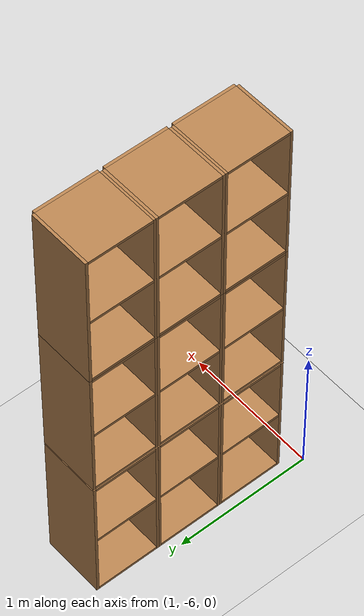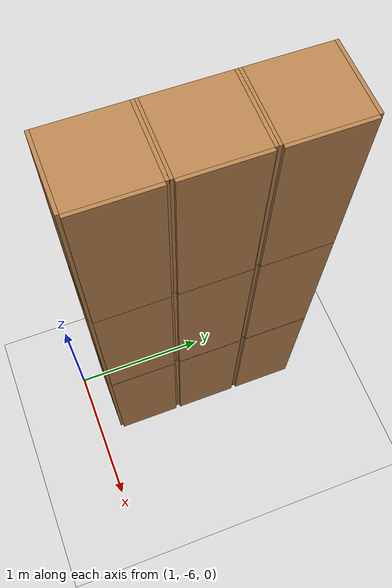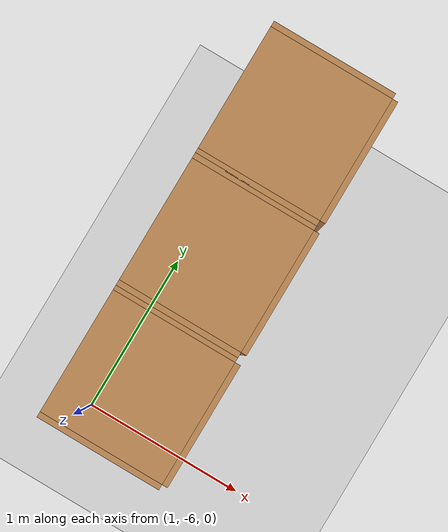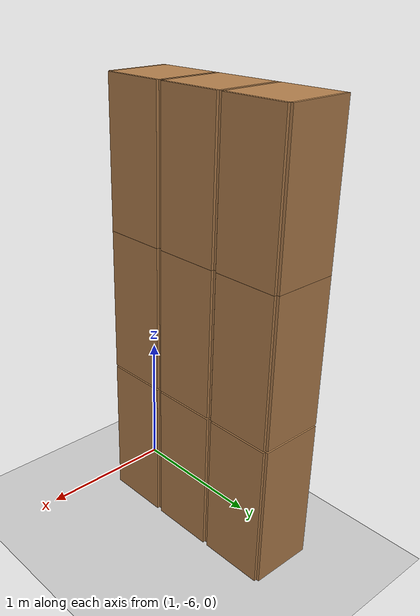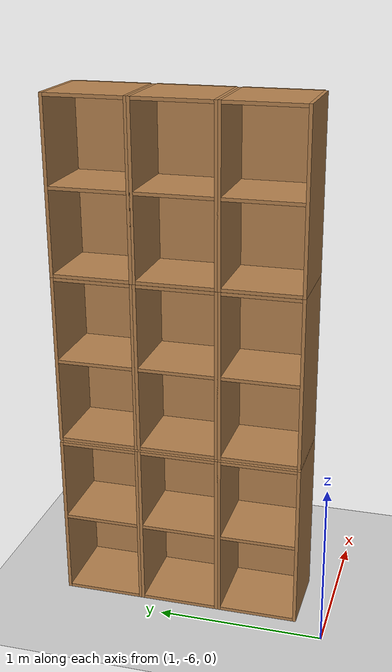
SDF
<sdf version="1.6">
 <world name="default">
  <model name="ground_plane">
   <static>1</static>
   <link name="link">
    <collision name="collision">
     <geometry><plane><normal>0 0 1</normal><size>100 100</size></plane></geometry>
     <surface>
      <contact><collide_bitmask>65535</collide_bitmask></contact>
      <friction><ode><mu>100</mu><mu2>50</mu2></ode></friction>
     </surface>
    </collision>
    <visual name="visual">
     <cast_shadows>0</cast_shadows>
     <geometry><plane><normal>0 0 1</normal><size>100 100</size></plane></geometry>
     <material>
      <script><uri>file://media/materials/scripts/gazebo.material</uri><name>Gazebo/Grey</name></script>
     </material>
    </visual>
   </link>
  </model>
  <model name="Locker18_clone_3_clone_clone_0">
   <model name="Locker18">
    <model name="Locker3">
     <model name="cabinet">
      <static>1</static>
      <link name="cabinet_bottom_plate">
       <inertial>
        <pose>0 0 -1 0 -0 0</pose>
        <inertia><ixx>2.05</ixx><ixy>0</ixy><ixz>0</ixz><iyy>2.05</iyy><iyz>0</iyz><izz>2.05</izz></inertia>
        <mass>25</mass>
       </inertial>
       <collision name="cabinet_bottom_plate_geom">
        <pose>0 0 0.01 0 -0 0</pose>
        <geometry><box><size>0.45 0.45 0.02</size></box></geometry>
       </collision>
       <visual name="cabinet_bottom_plate_geom_visual">
        <pose>0 0 0.01 0 -0 0</pose>
        <geometry><box><size>0.45 0.45 0.02</size></box></geometry>
        <material>
         <script><uri>file://media/materials/scripts/gazebo.material</uri><name>Gazebo/Wood</name></script>
        </material>
       </visual>
       <collision name="cabinet_bottom_plate_geom_cabinet_back_plate">
        <pose>0.235 0 0.51 0 -0 0</pose>
        <geometry><box><size>0.02 0.45 1.02</size></box></geometry>
       </collision>
       <visual name="cabinet_bottom_plate_geom_cabinet_back_plate_visual">
        <pose>0.235 0 0.51 0 -0 0</pose>
        <geometry><box><size>0.02 0.45 1.02</size></box></geometry>
        <material>
         <script><uri>file://media/materials/scripts/gazebo.material</uri><name>Gazebo/Wood</name></script>
        </material>
       </visual>
       <collision name="cabinet_bottom_plate_geom_cabinet_left_plate">
        <pose>0 0.235 0.51 0 -0 0</pose>
        <geometry><box><size>0.45 0.02 1.02</size></box></geometry>
       </collision>
       <visual name="cabinet_bottom_plate_geom_cabinet_left_plate_visual">
        <pose>0 0.235 0.51 0 -0 0</pose>
        <geometry><box><size>0.45 0.02 1.02</size></box></geometry>
        <material>
         <script><uri>file://media/materials/scripts/gazebo.material</uri><name>Gazebo/Wood</name></script>
        </material>
       </visual>
       <collision name="cabinet_bottom_plate_geom_cabinet_middle_plate">
        <pose>0 0 0.51 0 -0 0</pose>
        <geometry><box><size>0.45 0.45 0.02</size></box></geometry>
       </collision>
       <visual name="cabinet_bottom_plate_geom_cabinet_middle_plate_visual">
        <pose>0 0 0.51 0 -0 0</pose>
        <geometry><box><size>0.45 0.45 0.02</size></box></geometry>
        <material>
         <script><uri>file://media/materials/scripts/gazebo.material</uri><name>Gazebo/Wood</name></script>
        </material>
       </visual>
       <collision name="cabinet_bottom_plate_geom_cabinet_right_plate">
        <pose>0 -0.235 0.51 0 -0 0</pose>
        <geometry><box><size>0.45 0.02 1.02</size></box></geometry>
       </collision>
       <visual name="cabinet_bottom_plate_geom_cabinet_right_plate_visual">
        <pose>0 -0.235 0.51 0 -0 0</pose>
        <geometry><box><size>0.45 0.02 1.02</size></box></geometry>
        <material>
         <script><uri>file://media/materials/scripts/gazebo.material</uri><name>Gazebo/Wood</name></script>
        </material>
       </visual>
       <collision name="cabinet_bottom_plate_geom_cabinet_top_plate">
        <pose>0 0 1.01 0 -0 0</pose>
        <geometry><box><size>0.45 0.45 0.02</size></box></geometry>
       </collision>
       <visual name="cabinet_bottom_plate_geom_cabinet_top_plate_visual">
        <pose>0 0 1.01 0 -0 0</pose>
        <geometry><box><size>0.45 0.45 0.02</size></box></geometry>
        <material>
         <script><uri>file://media/materials/scripts/gazebo.material</uri><name>Gazebo/Wood</name></script>
        </material>
       </visual>
      </link>
      <pose>-0.676968 1.45758 0 0 -0 0</pose>
     </model>
     <model name="cabinet_clone">
      <static>1</static>
      <link name="cabinet_bottom_plate">
       <inertial>
        <pose>0 0 -1 0 -0 0</pose>
        <inertia><ixx>2.05</ixx><ixy>0</ixy><ixz>0</ixz><iyy>2.05</iyy><iyz>0</iyz><izz>2.05</izz></inertia>
        <mass>25</mass>
       </inertial>
       <collision name="cabinet_bottom_plate_geom">
        <pose>0 0 0.01 0 -0 0</pose>
        <geometry><box><size>0.45 0.45 0.02</size></box></geometry>
       </collision>
       <visual name="cabinet_bottom_plate_geom_visual">
        <pose>0 0 0.01 0 -0 0</pose>
        <geometry><box><size>0.45 0.45 0.02</size></box></geometry>
        <material>
         <script><uri>file://media/materials/scripts/gazebo.material</uri><name>Gazebo/Wood</name></script>
        </material>
       </visual>
       <collision name="cabinet_bottom_plate_geom_cabinet_back_plate">
        <pose>0.235 0 0.51 0 -0 0</pose>
        <geometry><box><size>0.02 0.45 1.02</size></box></geometry>
       </collision>
       <visual name="cabinet_bottom_plate_geom_cabinet_back_plate_visual">
        <pose>0.235 0 0.51 0 -0 0</pose>
        <geometry><box><size>0.02 0.45 1.02</size></box></geometry>
        <material>
         <script><uri>file://media/materials/scripts/gazebo.material</uri><name>Gazebo/Wood</name></script>
        </material>
       </visual>
       <collision name="cabinet_bottom_plate_geom_cabinet_left_plate">
        <pose>0 0.235 0.51 0 -0 0</pose>
        <geometry><box><size>0.45 0.02 1.02</size></box></geometry>
       </collision>
       <visual name="cabinet_bottom_plate_geom_cabinet_left_plate_visual">
        <pose>0 0.235 0.51 0 -0 0</pose>
        <geometry><box><size>0.45 0.02 1.02</size></box></geometry>
        <material>
         <script><uri>file://media/materials/scripts/gazebo.material</uri><name>Gazebo/Wood</name></script>
        </material>
       </visual>
       <collision name="cabinet_bottom_plate_geom_cabinet_middle_plate">
        <pose>0 0 0.51 0 -0 0</pose>
        <geometry><box><size>0.45 0.45 0.02</size></box></geometry>
       </collision>
       <visual name="cabinet_bottom_plate_geom_cabinet_middle_plate_visual">
        <pose>0 0 0.51 0 -0 0</pose>
        <geometry><box><size>0.45 0.45 0.02</size></box></geometry>
        <material>
         <script><uri>file://media/materials/scripts/gazebo.material</uri><name>Gazebo/Wood</name></script>
        </material>
       </visual>
       <collision name="cabinet_bottom_plate_geom_cabinet_right_plate">
        <pose>0 -0.235 0.51 0 -0 0</pose>
        <geometry><box><size>0.45 0.02 1.02</size></box></geometry>
       </collision>
       <visual name="cabinet_bottom_plate_geom_cabinet_right_plate_visual">
        <pose>0 -0.235 0.51 0 -0 0</pose>
        <geometry><box><size>0.45 0.02 1.02</size></box></geometry>
        <material>
         <script><uri>file://media/materials/scripts/gazebo.material</uri><name>Gazebo/Wood</name></script>
        </material>
       </visual>
       <collision name="cabinet_bottom_plate_geom_cabinet_top_plate">
        <pose>0 0 1.01 0 -0 0</pose>
        <geometry><box><size>0.45 0.45 0.02</size></box></geometry>
       </collision>
       <visual name="cabinet_bottom_plate_geom_cabinet_top_plate_visual">
        <pose>0 0 1.01 0 -0 0</pose>
        <geometry><box><size>0.45 0.45 0.02</size></box></geometry>
        <material>
         <script><uri>file://media/materials/scripts/gazebo.material</uri><name>Gazebo/Wood</name></script>
        </material>
       </visual>
      </link>
      <pose>-0.676968 0.970971 0 0 -0 0</pose>
     </model>
     <model name="cabinet_clone_0">
      <static>1</static>
      <link name="cabinet_bottom_plate">
       <inertial>
        <pose>0 0 -1 0 -0 0</pose>
        <inertia><ixx>2.05</ixx><ixy>0</ixy><ixz>0</ixz><iyy>2.05</iyy><iyz>0</iyz><izz>2.05</izz></inertia>
        <mass>25</mass>
       </inertial>
       <collision name="cabinet_bottom_plate_geom">
        <pose>0 0 0.01 0 -0 0</pose>
        <geometry><box><size>0.45 0.45 0.02</size></box></geometry>
       </collision>
       <visual name="cabinet_bottom_plate_geom_visual">
        <pose>0 0 0.01 0 -0 0</pose>
        <geometry><box><size>0.45 0.45 0.02</size></box></geometry>
        <material>
         <script><uri>file://media/materials/scripts/gazebo.material</uri><name>Gazebo/Wood</name></script>
        </material>
       </visual>
       <collision name="cabinet_bottom_plate_geom_cabinet_back_plate">
        <pose>0.235 0 0.51 0 -0 0</pose>
        <geometry><box><size>0.02 0.45 1.02</size></box></geometry>
       </collision>
       <visual name="cabinet_bottom_plate_geom_cabinet_back_plate_visual">
        <pose>0.235 0 0.51 0 -0 0</pose>
        <geometry><box><size>0.02 0.45 1.02</size></box></geometry>
        <material>
         <script><uri>file://media/materials/scripts/gazebo.material</uri><name>Gazebo/Wood</name></script>
        </material>
       </visual>
       <collision name="cabinet_bottom_plate_geom_cabinet_left_plate">
        <pose>0 0.235 0.51 0 -0 0</pose>
        <geometry><box><size>0.45 0.02 1.02</size></box></geometry>
       </collision>
       <visual name="cabinet_bottom_plate_geom_cabinet_left_plate_visual">
        <pose>0 0.235 0.51 0 -0 0</pose>
        <geometry><box><size>0.45 0.02 1.02</size></box></geometry>
        <material>
         <script><uri>file://media/materials/scripts/gazebo.material</uri><name>Gazebo/Wood</name></script>
        </material>
       </visual>
       <collision name="cabinet_bottom_plate_geom_cabinet_middle_plate">
        <pose>0 0 0.51 0 -0 0</pose>
        <geometry><box><size>0.45 0.45 0.02</size></box></geometry>
       </collision>
       <visual name="cabinet_bottom_plate_geom_cabinet_middle_plate_visual">
        <pose>0 0 0.51 0 -0 0</pose>
        <geometry><box><size>0.45 0.45 0.02</size></box></geometry>
        <material>
         <script><uri>file://media/materials/scripts/gazebo.material</uri><name>Gazebo/Wood</name></script>
        </material>
       </visual>
       <collision name="cabinet_bottom_plate_geom_cabinet_right_plate">
        <pose>0 -0.235 0.51 0 -0 0</pose>
        <geometry><box><size>0.45 0.02 1.02</size></box></geometry>
       </collision>
       <visual name="cabinet_bottom_plate_geom_cabinet_right_plate_visual">
        <pose>0 -0.235 0.51 0 -0 0</pose>
        <geometry><box><size>0.45 0.02 1.02</size></box></geometry>
        <material>
         <script><uri>file://media/materials/scripts/gazebo.material</uri><name>Gazebo/Wood</name></script>
        </material>
       </visual>
       <collision name="cabinet_bottom_plate_geom_cabinet_top_plate">
        <pose>0 0 1.01 0 -0 0</pose>
        <geometry><box><size>0.45 0.45 0.02</size></box></geometry>
       </collision>
       <visual name="cabinet_bottom_plate_geom_cabinet_top_plate_visual">
        <pose>0 0 1.01 0 -0 0</pose>
        <geometry><box><size>0.45 0.45 0.02</size></box></geometry>
        <material>
         <script><uri>file://media/materials/scripts/gazebo.material</uri><name>Gazebo/Wood</name></script>
        </material>
       </visual>
      </link>
      <pose>-0.676968 0.48391 0 0 -0 0</pose>
     </model>
     <static>0</static>
     <pose>0 3e-06 -1.02763 0 -0 0</pose>
    </model>
    <model name="Locker3_clone">
     <model name="cabinet">
      <static>1</static>
      <link name="cabinet_bottom_plate">
       <inertial>
        <pose>0 0 -1 0 -0 0</pose>
        <inertia><ixx>2.05</ixx><ixy>0</ixy><ixz>0</ixz><iyy>2.05</iyy><iyz>0</iyz><izz>2.05</izz></inertia>
        <mass>25</mass>
       </inertial>
       <collision name="cabinet_bottom_plate_geom">
        <pose>0 0 0.01 0 -0 0</pose>
        <geometry><box><size>0.45 0.45 0.02</size></box></geometry>
       </collision>
       <visual name="cabinet_bottom_plate_geom_visual">
        <pose>0 0 0.01 0 -0 0</pose>
        <geometry><box><size>0.45 0.45 0.02</size></box></geometry>
        <material>
         <script><uri>file://media/materials/scripts/gazebo.material</uri><name>Gazebo/Wood</name></script>
        </material>
       </visual>
       <collision name="cabinet_bottom_plate_geom_cabinet_back_plate">
        <pose>0.235 0 0.51 0 -0 0</pose>
        <geometry><box><size>0.02 0.45 1.02</size></box></geometry>
       </collision>
       <visual name="cabinet_bottom_plate_geom_cabinet_back_plate_visual">
        <pose>0.235 0 0.51 0 -0 0</pose>
        <geometry><box><size>0.02 0.45 1.02</size></box></geometry>
        <material>
         <script><uri>file://media/materials/scripts/gazebo.material</uri><name>Gazebo/Wood</name></script>
        </material>
       </visual>
       <collision name="cabinet_bottom_plate_geom_cabinet_left_plate">
        <pose>0 0.235 0.51 0 -0 0</pose>
        <geometry><box><size>0.45 0.02 1.02</size></box></geometry>
       </collision>
       <visual name="cabinet_bottom_plate_geom_cabinet_left_plate_visual">
        <pose>0 0.235 0.51 0 -0 0</pose>
        <geometry><box><size>0.45 0.02 1.02</size></box></geometry>
        <material>
         <script><uri>file://media/materials/scripts/gazebo.material</uri><name>Gazebo/Wood</name></script>
        </material>
       </visual>
       <collision name="cabinet_bottom_plate_geom_cabinet_middle_plate">
        <pose>0 0 0.51 0 -0 0</pose>
        <geometry><box><size>0.45 0.45 0.02</size></box></geometry>
       </collision>
       <visual name="cabinet_bottom_plate_geom_cabinet_middle_plate_visual">
        <pose>0 0 0.51 0 -0 0</pose>
        <geometry><box><size>0.45 0.45 0.02</size></box></geometry>
        <material>
         <script><uri>file://media/materials/scripts/gazebo.material</uri><name>Gazebo/Wood</name></script>
        </material>
       </visual>
       <collision name="cabinet_bottom_plate_geom_cabinet_right_plate">
        <pose>0 -0.235 0.51 0 -0 0</pose>
        <geometry><box><size>0.45 0.02 1.02</size></box></geometry>
       </collision>
       <visual name="cabinet_bottom_plate_geom_cabinet_right_plate_visual">
        <pose>0 -0.235 0.51 0 -0 0</pose>
        <geometry><box><size>0.45 0.02 1.02</size></box></geometry>
        <material>
         <script><uri>file://media/materials/scripts/gazebo.material</uri><name>Gazebo/Wood</name></script>
        </material>
       </visual>
       <collision name="cabinet_bottom_plate_geom_cabinet_top_plate">
        <pose>0 0 1.01 0 -0 0</pose>
        <geometry><box><size>0.45 0.45 0.02</size></box></geometry>
       </collision>
       <visual name="cabinet_bottom_plate_geom_cabinet_top_plate_visual">
        <pose>0 0 1.01 0 -0 0</pose>
        <geometry><box><size>0.45 0.45 0.02</size></box></geometry>
        <material>
         <script><uri>file://media/materials/scripts/gazebo.material</uri><name>Gazebo/Wood</name></script>
        </material>
       </visual>
      </link>
      <pose>-0.676968 1.45758 0 0 -0 0</pose>
     </model>
     <model name="cabinet_clone">
      <static>1</static>
      <link name="cabinet_bottom_plate">
       <inertial>
        <pose>0 0 -1 0 -0 0</pose>
        <inertia><ixx>2.05</ixx><ixy>0</ixy><ixz>0</ixz><iyy>2.05</iyy><iyz>0</iyz><izz>2.05</izz></inertia>
        <mass>25</mass>
       </inertial>
       <collision name="cabinet_bottom_plate_geom">
        <pose>0 0 0.01 0 -0 0</pose>
        <geometry><box><size>0.45 0.45 0.02</size></box></geometry>
       </collision>
       <visual name="cabinet_bottom_plate_geom_visual">
        <pose>0 0 0.01 0 -0 0</pose>
        <geometry><box><size>0.45 0.45 0.02</size></box></geometry>
        <material>
         <script><uri>file://media/materials/scripts/gazebo.material</uri><name>Gazebo/Wood</name></script>
        </material>
       </visual>
       <collision name="cabinet_bottom_plate_geom_cabinet_back_plate">
        <pose>0.235 0 0.51 0 -0 0</pose>
        <geometry><box><size>0.02 0.45 1.02</size></box></geometry>
       </collision>
       <visual name="cabinet_bottom_plate_geom_cabinet_back_plate_visual">
        <pose>0.235 0 0.51 0 -0 0</pose>
        <geometry><box><size>0.02 0.45 1.02</size></box></geometry>
        <material>
         <script><uri>file://media/materials/scripts/gazebo.material</uri><name>Gazebo/Wood</name></script>
        </material>
       </visual>
       <collision name="cabinet_bottom_plate_geom_cabinet_left_plate">
        <pose>0 0.235 0.51 0 -0 0</pose>
        <geometry><box><size>0.45 0.02 1.02</size></box></geometry>
       </collision>
       <visual name="cabinet_bottom_plate_geom_cabinet_left_plate_visual">
        <pose>0 0.235 0.51 0 -0 0</pose>
        <geometry><box><size>0.45 0.02 1.02</size></box></geometry>
        <material>
         <script><uri>file://media/materials/scripts/gazebo.material</uri><name>Gazebo/Wood</name></script>
        </material>
       </visual>
       <collision name="cabinet_bottom_plate_geom_cabinet_middle_plate">
        <pose>0 0 0.51 0 -0 0</pose>
        <geometry><box><size>0.45 0.45 0.02</size></box></geometry>
       </collision>
       <visual name="cabinet_bottom_plate_geom_cabinet_middle_plate_visual">
        <pose>0 0 0.51 0 -0 0</pose>
        <geometry><box><size>0.45 0.45 0.02</size></box></geometry>
        <material>
         <script><uri>file://media/materials/scripts/gazebo.material</uri><name>Gazebo/Wood</name></script>
        </material>
       </visual>
       <collision name="cabinet_bottom_plate_geom_cabinet_right_plate">
        <pose>0 -0.235 0.51 0 -0 0</pose>
        <geometry><box><size>0.45 0.02 1.02</size></box></geometry>
       </collision>
       <visual name="cabinet_bottom_plate_geom_cabinet_right_plate_visual">
        <pose>0 -0.235 0.51 0 -0 0</pose>
        <geometry><box><size>0.45 0.02 1.02</size></box></geometry>
        <material>
         <script><uri>file://media/materials/scripts/gazebo.material</uri><name>Gazebo/Wood</name></script>
        </material>
       </visual>
       <collision name="cabinet_bottom_plate_geom_cabinet_top_plate">
        <pose>0 0 1.01 0 -0 0</pose>
        <geometry><box><size>0.45 0.45 0.02</size></box></geometry>
       </collision>
       <visual name="cabinet_bottom_plate_geom_cabinet_top_plate_visual">
        <pose>0 0 1.01 0 -0 0</pose>
        <geometry><box><size>0.45 0.45 0.02</size></box></geometry>
        <material>
         <script><uri>file://media/materials/scripts/gazebo.material</uri><name>Gazebo/Wood</name></script>
        </material>
       </visual>
      </link>
      <pose>-0.676968 0.970971 0 0 -0 0</pose>
     </model>
     <model name="cabinet_clone_0">
      <static>1</static>
      <link name="cabinet_bottom_plate">
       <inertial>
        <pose>0 0 -1 0 -0 0</pose>
        <inertia><ixx>2.05</ixx><ixy>0</ixy><ixz>0</ixz><iyy>2.05</iyy><iyz>0</iyz><izz>2.05</izz></inertia>
        <mass>25</mass>
       </inertial>
       <collision name="cabinet_bottom_plate_geom">
        <pose>0 0 0.01 0 -0 0</pose>
        <geometry><box><size>0.45 0.45 0.02</size></box></geometry>
       </collision>
       <visual name="cabinet_bottom_plate_geom_visual">
        <pose>0 0 0.01 0 -0 0</pose>
        <geometry><box><size>0.45 0.45 0.02</size></box></geometry>
        <material>
         <script><uri>file://media/materials/scripts/gazebo.material</uri><name>Gazebo/Wood</name></script>
        </material>
       </visual>
       <collision name="cabinet_bottom_plate_geom_cabinet_back_plate">
        <pose>0.235 0 0.51 0 -0 0</pose>
        <geometry><box><size>0.02 0.45 1.02</size></box></geometry>
       </collision>
       <visual name="cabinet_bottom_plate_geom_cabinet_back_plate_visual">
        <pose>0.235 0 0.51 0 -0 0</pose>
        <geometry><box><size>0.02 0.45 1.02</size></box></geometry>
        <material>
         <script><uri>file://media/materials/scripts/gazebo.material</uri><name>Gazebo/Wood</name></script>
        </material>
       </visual>
       <collision name="cabinet_bottom_plate_geom_cabinet_left_plate">
        <pose>0 0.235 0.51 0 -0 0</pose>
        <geometry><box><size>0.45 0.02 1.02</size></box></geometry>
       </collision>
       <visual name="cabinet_bottom_plate_geom_cabinet_left_plate_visual">
        <pose>0 0.235 0.51 0 -0 0</pose>
        <geometry><box><size>0.45 0.02 1.02</size></box></geometry>
        <material>
         <script><uri>file://media/materials/scripts/gazebo.material</uri><name>Gazebo/Wood</name></script>
        </material>
       </visual>
       <collision name="cabinet_bottom_plate_geom_cabinet_middle_plate">
        <pose>0 0 0.51 0 -0 0</pose>
        <geometry><box><size>0.45 0.45 0.02</size></box></geometry>
       </collision>
       <visual name="cabinet_bottom_plate_geom_cabinet_middle_plate_visual">
        <pose>0 0 0.51 0 -0 0</pose>
        <geometry><box><size>0.45 0.45 0.02</size></box></geometry>
        <material>
         <script><uri>file://media/materials/scripts/gazebo.material</uri><name>Gazebo/Wood</name></script>
        </material>
       </visual>
       <collision name="cabinet_bottom_plate_geom_cabinet_right_plate">
        <pose>0 -0.235 0.51 0 -0 0</pose>
        <geometry><box><size>0.45 0.02 1.02</size></box></geometry>
       </collision>
       <visual name="cabinet_bottom_plate_geom_cabinet_right_plate_visual">
        <pose>0 -0.235 0.51 0 -0 0</pose>
        <geometry><box><size>0.45 0.02 1.02</size></box></geometry>
        <material>
         <script><uri>file://media/materials/scripts/gazebo.material</uri><name>Gazebo/Wood</name></script>
        </material>
       </visual>
       <collision name="cabinet_bottom_plate_geom_cabinet_top_plate">
        <pose>0 0 1.01 0 -0 0</pose>
        <geometry><box><size>0.45 0.45 0.02</size></box></geometry>
       </collision>
       <visual name="cabinet_bottom_plate_geom_cabinet_top_plate_visual">
        <pose>0 0 1.01 0 -0 0</pose>
        <geometry><box><size>0.45 0.45 0.02</size></box></geometry>
        <material>
         <script><uri>file://media/materials/scripts/gazebo.material</uri><name>Gazebo/Wood</name></script>
        </material>
       </visual>
      </link>
      <pose>-0.676968 0.48391 0 0 -0 0</pose>
     </model>
     <static>0</static>
     <pose>0 3e-06 0.003717 0 -0 0</pose>
    </model>
    <model name="Locker3_clone_clone">
     <model name="cabinet">
      <static>1</static>
      <link name="cabinet_bottom_plate">
       <inertial>
        <pose>0 0 -1 0 -0 0</pose>
        <inertia><ixx>2.05</ixx><ixy>0</ixy><ixz>0</ixz><iyy>2.05</iyy><iyz>0</iyz><izz>2.05</izz></inertia>
        <mass>25</mass>
       </inertial>
       <collision name="cabinet_bottom_plate_geom">
        <pose>0 0 0.01 0 -0 0</pose>
        <geometry><box><size>0.45 0.45 0.02</size></box></geometry>
       </collision>
       <visual name="cabinet_bottom_plate_geom_visual">
        <pose>0 0 0.01 0 -0 0</pose>
        <geometry><box><size>0.45 0.45 0.02</size></box></geometry>
        <material>
         <script><uri>file://media/materials/scripts/gazebo.material</uri><name>Gazebo/Wood</name></script>
        </material>
       </visual>
       <collision name="cabinet_bottom_plate_geom_cabinet_back_plate">
        <pose>0.235 0 0.51 0 -0 0</pose>
        <geometry><box><size>0.02 0.45 1.02</size></box></geometry>
       </collision>
       <visual name="cabinet_bottom_plate_geom_cabinet_back_plate_visual">
        <pose>0.235 0 0.51 0 -0 0</pose>
        <geometry><box><size>0.02 0.45 1.02</size></box></geometry>
        <material>
         <script><uri>file://media/materials/scripts/gazebo.material</uri><name>Gazebo/Wood</name></script>
        </material>
       </visual>
       <collision name="cabinet_bottom_plate_geom_cabinet_left_plate">
        <pose>0 0.235 0.51 0 -0 0</pose>
        <geometry><box><size>0.45 0.02 1.02</size></box></geometry>
       </collision>
       <visual name="cabinet_bottom_plate_geom_cabinet_left_plate_visual">
        <pose>0 0.235 0.51 0 -0 0</pose>
        <geometry><box><size>0.45 0.02 1.02</size></box></geometry>
        <material>
         <script><uri>file://media/materials/scripts/gazebo.material</uri><name>Gazebo/Wood</name></script>
        </material>
       </visual>
       <collision name="cabinet_bottom_plate_geom_cabinet_middle_plate">
        <pose>0 0 0.51 0 -0 0</pose>
        <geometry><box><size>0.45 0.45 0.02</size></box></geometry>
       </collision>
       <visual name="cabinet_bottom_plate_geom_cabinet_middle_plate_visual">
        <pose>0 0 0.51 0 -0 0</pose>
        <geometry><box><size>0.45 0.45 0.02</size></box></geometry>
        <material>
         <script><uri>file://media/materials/scripts/gazebo.material</uri><name>Gazebo/Wood</name></script>
        </material>
       </visual>
       <collision name="cabinet_bottom_plate_geom_cabinet_right_plate">
        <pose>0 -0.235 0.51 0 -0 0</pose>
        <geometry><box><size>0.45 0.02 1.02</size></box></geometry>
       </collision>
       <visual name="cabinet_bottom_plate_geom_cabinet_right_plate_visual">
        <pose>0 -0.235 0.51 0 -0 0</pose>
        <geometry><box><size>0.45 0.02 1.02</size></box></geometry>
        <material>
         <script><uri>file://media/materials/scripts/gazebo.material</uri><name>Gazebo/Wood</name></script>
        </material>
       </visual>
       <collision name="cabinet_bottom_plate_geom_cabinet_top_plate">
        <pose>0 0 1.01 0 -0 0</pose>
        <geometry><box><size>0.45 0.45 0.02</size></box></geometry>
       </collision>
       <visual name="cabinet_bottom_plate_geom_cabinet_top_plate_visual">
        <pose>0 0 1.01 0 -0 0</pose>
        <geometry><box><size>0.45 0.45 0.02</size></box></geometry>
        <material>
         <script><uri>file://media/materials/scripts/gazebo.material</uri><name>Gazebo/Wood</name></script>
        </material>
       </visual>
      </link>
      <pose>-0.676968 1.45758 0 0 -0 0</pose>
     </model>
     <model name="cabinet_clone">
      <static>1</static>
      <link name="cabinet_bottom_plate">
       <inertial>
        <pose>0 0 -1 0 -0 0</pose>
        <inertia><ixx>2.05</ixx><ixy>0</ixy><ixz>0</ixz><iyy>2.05</iyy><iyz>0</iyz><izz>2.05</izz></inertia>
        <mass>25</mass>
       </inertial>
       <collision name="cabinet_bottom_plate_geom">
        <pose>0 0 0.01 0 -0 0</pose>
        <geometry><box><size>0.45 0.45 0.02</size></box></geometry>
       </collision>
       <visual name="cabinet_bottom_plate_geom_visual">
        <pose>0 0 0.01 0 -0 0</pose>
        <geometry><box><size>0.45 0.45 0.02</size></box></geometry>
        <material>
         <script><uri>file://media/materials/scripts/gazebo.material</uri><name>Gazebo/Wood</name></script>
        </material>
       </visual>
       <collision name="cabinet_bottom_plate_geom_cabinet_back_plate">
        <pose>0.235 0 0.51 0 -0 0</pose>
        <geometry><box><size>0.02 0.45 1.02</size></box></geometry>
       </collision>
       <visual name="cabinet_bottom_plate_geom_cabinet_back_plate_visual">
        <pose>0.235 0 0.51 0 -0 0</pose>
        <geometry><box><size>0.02 0.45 1.02</size></box></geometry>
        <material>
         <script><uri>file://media/materials/scripts/gazebo.material</uri><name>Gazebo/Wood</name></script>
        </material>
       </visual>
       <collision name="cabinet_bottom_plate_geom_cabinet_left_plate">
        <pose>0 0.235 0.51 0 -0 0</pose>
        <geometry><box><size>0.45 0.02 1.02</size></box></geometry>
       </collision>
       <visual name="cabinet_bottom_plate_geom_cabinet_left_plate_visual">
        <pose>0 0.235 0.51 0 -0 0</pose>
        <geometry><box><size>0.45 0.02 1.02</size></box></geometry>
        <material>
         <script><uri>file://media/materials/scripts/gazebo.material</uri><name>Gazebo/Wood</name></script>
        </material>
       </visual>
       <collision name="cabinet_bottom_plate_geom_cabinet_middle_plate">
        <pose>0 0 0.51 0 -0 0</pose>
        <geometry><box><size>0.45 0.45 0.02</size></box></geometry>
       </collision>
       <visual name="cabinet_bottom_plate_geom_cabinet_middle_plate_visual">
        <pose>0 0 0.51 0 -0 0</pose>
        <geometry><box><size>0.45 0.45 0.02</size></box></geometry>
        <material>
         <script><uri>file://media/materials/scripts/gazebo.material</uri><name>Gazebo/Wood</name></script>
        </material>
       </visual>
       <collision name="cabinet_bottom_plate_geom_cabinet_right_plate">
        <pose>0 -0.235 0.51 0 -0 0</pose>
        <geometry><box><size>0.45 0.02 1.02</size></box></geometry>
       </collision>
       <visual name="cabinet_bottom_plate_geom_cabinet_right_plate_visual">
        <pose>0 -0.235 0.51 0 -0 0</pose>
        <geometry><box><size>0.45 0.02 1.02</size></box></geometry>
        <material>
         <script><uri>file://media/materials/scripts/gazebo.material</uri><name>Gazebo/Wood</name></script>
        </material>
       </visual>
       <collision name="cabinet_bottom_plate_geom_cabinet_top_plate">
        <pose>0 0 1.01 0 -0 0</pose>
        <geometry><box><size>0.45 0.45 0.02</size></box></geometry>
       </collision>
       <visual name="cabinet_bottom_plate_geom_cabinet_top_plate_visual">
        <pose>0 0 1.01 0 -0 0</pose>
        <geometry><box><size>0.45 0.45 0.02</size></box></geometry>
        <material>
         <script><uri>file://media/materials/scripts/gazebo.material</uri><name>Gazebo/Wood</name></script>
        </material>
       </visual>
      </link>
      <pose>-0.676968 0.970971 0 0 -0 0</pose>
     </model>
     <model name="cabinet_clone_0">
      <static>1</static>
      <link name="cabinet_bottom_plate">
       <inertial>
        <pose>0 0 -1 0 -0 0</pose>
        <inertia><ixx>2.05</ixx><ixy>0</ixy><ixz>0</ixz><iyy>2.05</iyy><iyz>0</iyz><izz>2.05</izz></inertia>
        <mass>25</mass>
       </inertial>
       <collision name="cabinet_bottom_plate_geom">
        <pose>0 0 0.01 0 -0 0</pose>
        <geometry><box><size>0.45 0.45 0.02</size></box></geometry>
       </collision>
       <visual name="cabinet_bottom_plate_geom_visual">
        <pose>0 0 0.01 0 -0 0</pose>
        <geometry><box><size>0.45 0.45 0.02</size></box></geometry>
        <material>
         <script><uri>file://media/materials/scripts/gazebo.material</uri><name>Gazebo/Wood</name></script>
        </material>
       </visual>
       <collision name="cabinet_bottom_plate_geom_cabinet_back_plate">
        <pose>0.235 0 0.51 0 -0 0</pose>
        <geometry><box><size>0.02 0.45 1.02</size></box></geometry>
       </collision>
       <visual name="cabinet_bottom_plate_geom_cabinet_back_plate_visual">
        <pose>0.235 0 0.51 0 -0 0</pose>
        <geometry><box><size>0.02 0.45 1.02</size></box></geometry>
        <material>
         <script><uri>file://media/materials/scripts/gazebo.material</uri><name>Gazebo/Wood</name></script>
        </material>
       </visual>
       <collision name="cabinet_bottom_plate_geom_cabinet_left_plate">
        <pose>0 0.235 0.51 0 -0 0</pose>
        <geometry><box><size>0.45 0.02 1.02</size></box></geometry>
       </collision>
       <visual name="cabinet_bottom_plate_geom_cabinet_left_plate_visual">
        <pose>0 0.235 0.51 0 -0 0</pose>
        <geometry><box><size>0.45 0.02 1.02</size></box></geometry>
        <material>
         <script><uri>file://media/materials/scripts/gazebo.material</uri><name>Gazebo/Wood</name></script>
        </material>
       </visual>
       <collision name="cabinet_bottom_plate_geom_cabinet_middle_plate">
        <pose>0 0 0.51 0 -0 0</pose>
        <geometry><box><size>0.45 0.45 0.02</size></box></geometry>
       </collision>
       <visual name="cabinet_bottom_plate_geom_cabinet_middle_plate_visual">
        <pose>0 0 0.51 0 -0 0</pose>
        <geometry><box><size>0.45 0.45 0.02</size></box></geometry>
        <material>
         <script><uri>file://media/materials/scripts/gazebo.material</uri><name>Gazebo/Wood</name></script>
        </material>
       </visual>
       <collision name="cabinet_bottom_plate_geom_cabinet_right_plate">
        <pose>0 -0.235 0.51 0 -0 0</pose>
        <geometry><box><size>0.45 0.02 1.02</size></box></geometry>
       </collision>
       <visual name="cabinet_bottom_plate_geom_cabinet_right_plate_visual">
        <pose>0 -0.235 0.51 0 -0 0</pose>
        <geometry><box><size>0.45 0.02 1.02</size></box></geometry>
        <material>
         <script><uri>file://media/materials/scripts/gazebo.material</uri><name>Gazebo/Wood</name></script>
        </material>
       </visual>
       <collision name="cabinet_bottom_plate_geom_cabinet_top_plate">
        <pose>0 0 1.01 0 -0 0</pose>
        <geometry><box><size>0.45 0.45 0.02</size></box></geometry>
       </collision>
       <visual name="cabinet_bottom_plate_geom_cabinet_top_plate_visual">
        <pose>0 0 1.01 0 -0 0</pose>
        <geometry><box><size>0.45 0.45 0.02</size></box></geometry>
        <material>
         <script><uri>file://media/materials/scripts/gazebo.material</uri><name>Gazebo/Wood</name></script>
        </material>
       </visual>
      </link>
      <pose>-0.676968 0.48391 0 0 -0 0</pose>
     </model>
     <static>0</static>
     <pose>0 3e-06 1.02391 0 -0 0</pose>
    </model>
    <static>0</static>
    <pose>-0 4e-06 4e-06 0 -0 0</pose>
   </model>
   <static>0</static>
   <pose>1.94686 -6.07433 1.08672 0 -0 0</pose>
  </model>
 </world>
</sdf>
